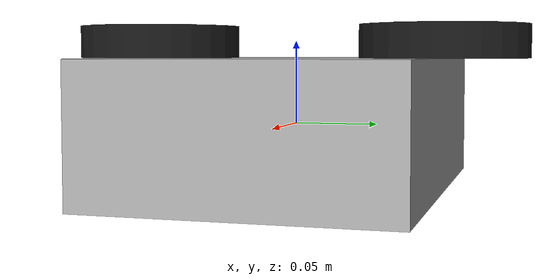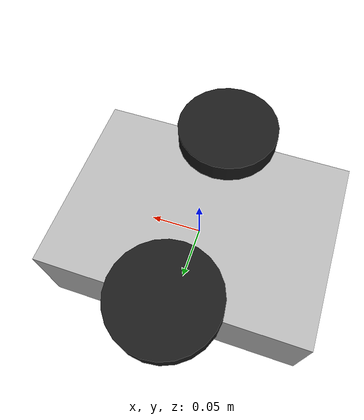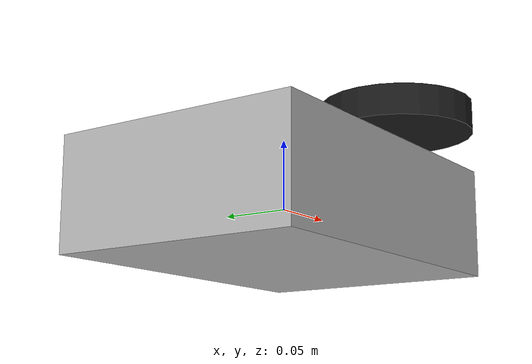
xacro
<?xml version="1.0"?>
<robot xmlns:xacro="http://ros.org/wiki/xacro" name="maze_bot">
  <!-- Simple differential drive robot -->
  <xacro:property name="wheel_radius" value="0.05"/>
  <xacro:property name="wheel_width" value="0.02"/>
  <xacro:property name="base_length" value="0.25"/>
  <xacro:property name="base_width" value="0.18"/>
  <xacro:property name="base_height" value="0.08"/>

  <link name="base_link">
    <visual>
      <geometry>
        <box size="${base_length} ${base_width} ${base_height}"/>
      </geometry>
      <material name="gray">
        <color rgba="0.7 0.7 0.7 1"/>
      </material>
    </visual>
    <collision>
      <geometry>
        <box size="${base_length} ${base_width} ${base_height}"/>
      </geometry>
    </collision>
    <inertial>
      <mass value="2.0"/>
      <inertia ixx="0.01" ixy="0.0" ixz="0.0" iyy="0.01" iyz="0.0" izz="0.01"/>
    </inertial>
  </link>

  <!-- Left wheel -->
  <link name="left_wheel">
    <visual>
      <geometry>
        <cylinder length="${wheel_width}" radius="${wheel_radius}"/>
      </geometry>
      <material name="black">
        <color rgba="0.1 0.1 0.1 1"/>
      </material>
    </visual>
    <collision>
      <geometry>
        <cylinder length="${wheel_width}" radius="${wheel_radius}"/>
      </geometry>
    </collision>
    <inertial>
      <mass value="0.2"/>
      <inertia ixx="0.001" ixy="0.0" ixz="0.0" iyy="0.001" iyz="0.0" izz="0.001"/>
    </inertial>
  </link>

  <!-- Right wheel -->
  <link name="right_wheel">
    <visual>
      <geometry>
        <cylinder length="${wheel_width}" radius="${wheel_radius}"/>
      </geometry>
      <material name="black"/>
    </visual>
    <collision>
      <geometry>
        <cylinder length="${wheel_width}" radius="${wheel_radius}"/>
      </geometry>
    </collision>
    <inertial>
      <mass value="0.2"/>
      <inertia ixx="0.001" ixy="0.0" ixz="0.0" iyy="0.001" iyz="0.0" izz="0.001"/>
    </inertial>
  </link>

  <!-- Joints -->
  <joint name="left_wheel_joint" type="continuous">
    <parent link="base_link"/>
    <child link="left_wheel"/>
    <origin xyz="0 ${base_width/2} ${wheel_radius}" rpy="0 0 0"/>
    <axis xyz="0 0 1"/>
  </joint>

  <joint name="right_wheel_joint" type="continuous">
    <parent link="base_link"/>
    <child link="right_wheel"/>
    <origin xyz="0 -${base_width/2} ${wheel_radius}" rpy="0 0 0"/>
    <axis xyz="0 0 1"/>
  </joint>

</robot>
